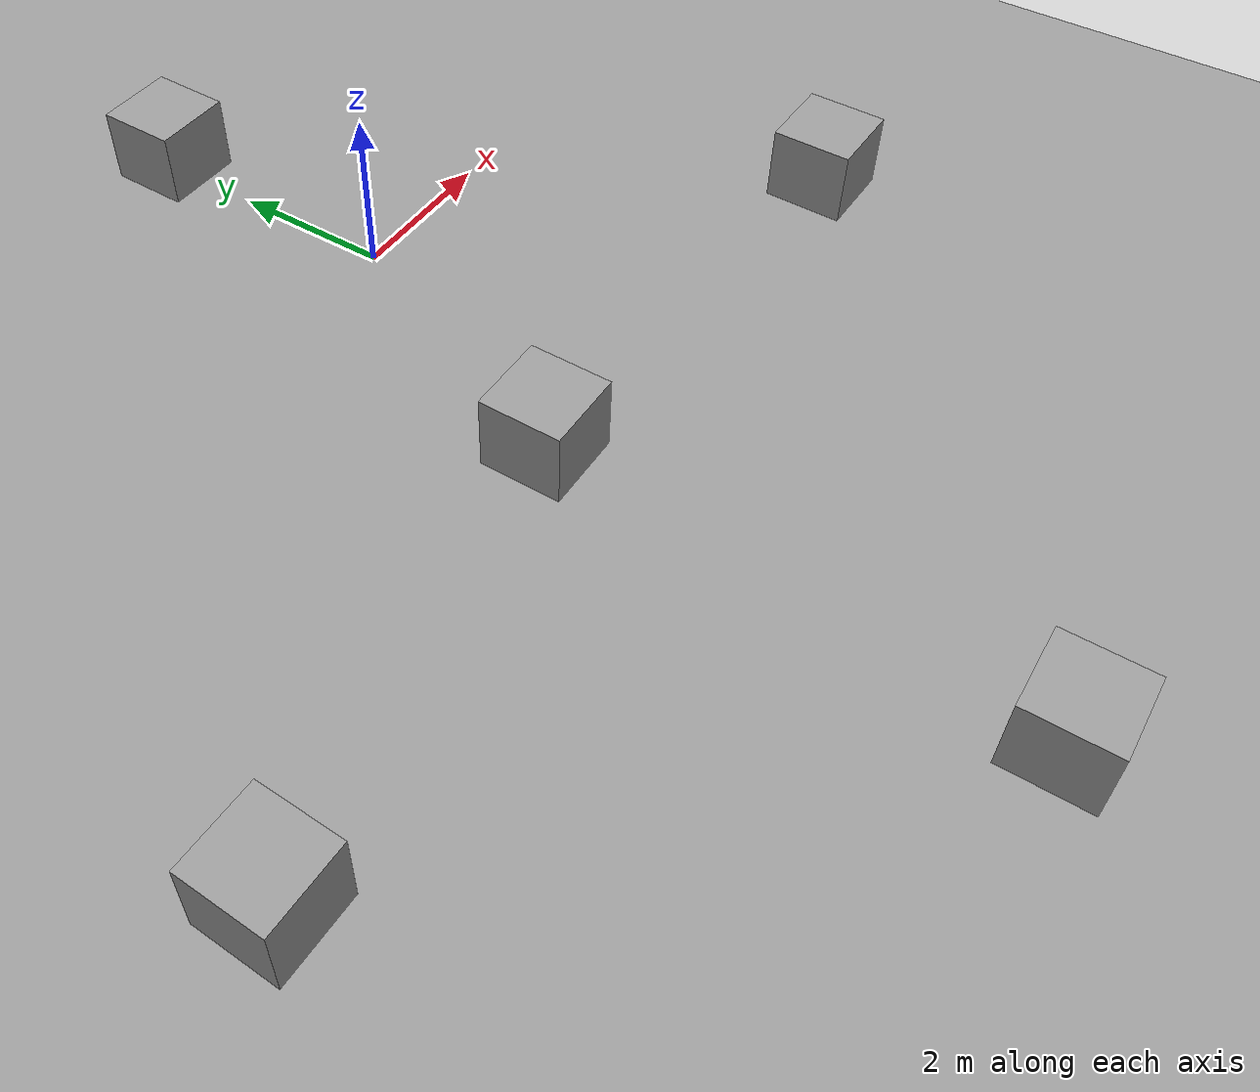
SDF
<sdf version="1.4">
 <world name="default">
  <light name="sun" type="directional">
   <pose>0 0 10 0 -0 0</pose>
   <diffuse>0.8 0.8 0.8 1</diffuse>
   <specular>0.2 0.2 0.2 1</specular>
   <attenuation>
    <range>1000</range>
    <constant>0.9</constant>
    <linear>0.01</linear>
    <quadratic>0.001</quadratic>
   </attenuation>
   <direction>-0.5 0.1 -0.9</direction>
  </light>
  <model name="ground_plane">
   <static>1</static>
   <link name="link">
    <collision name="collision">
     <geometry><plane><normal>0 0 1</normal><size>100 100</size></plane></geometry>
     <surface><friction><ode><mu>100</mu><mu2>50</mu2></ode></friction></surface>
    </collision>
    <visual name="visual">
     <cast_shadows>0</cast_shadows>
     <geometry><plane><normal>0 0 1</normal><size>100 100</size></plane></geometry>
     <material>
      <script><uri>file://media/materials/scripts/gazebo.material</uri><name>Gazebo/Grey</name></script>
     </material>
    </visual>
    <velocity_decay><linear>0</linear><angular>0</angular></velocity_decay>
   </link>
  </model>
  <physics type="ode">
   <max_step_size>0.001</max_step_size>
   <real_time_factor>1</real_time_factor>
   <real_time_update_rate>1000</real_time_update_rate>
   <gravity>0 0 -9.8</gravity>
  </physics>
  <scene><ambient>0.4 0.4 0.4 1</ambient><background>0.7 0.7 0.7 1</background><shadows>1</shadows></scene>
  <spherical_coordinates>
   <surface_model>EARTH_WGS84</surface_model>
   <latitude_deg>0</latitude_deg>
   <longitude_deg>0</longitude_deg>
   <elevation>0</elevation>
   <heading_deg>0</heading_deg>
  </spherical_coordinates>
  <model name="unit_box_1">
   <pose>-1.58179 -3.54762 0.499991 -1.65436e-24 6e-06 -0.001808</pose>
   <link name="link">
    <inertial>
     <mass>1</mass>
     <inertia><ixx>1</ixx><ixy>0</ixy><ixz>0</ixz><iyy>1</iyy><iyz>0</iyz><izz>1</izz></inertia>
    </inertial>
    <collision name="collision"><geometry><box><size>2.94012 3.40072 1</size></box></geometry></collision>
    <visual name="visual">
     <geometry><box><size>1 1 1</size></box></geometry>
     <material>
      <script><uri>file://media/materials/scripts/gazebo.material</uri><name>Gazebo/Grey</name></script>
     </material>
    </visual>
    <velocity_decay><linear>0</linear><angular>0</angular></velocity_decay>
   </link>
   <static>0</static>
  </model>
  <model name="ground_plane_0">
   <static>1</static>
   <link name="link">
    <collision name="collision">
     <geometry><plane><normal>0 0 1</normal><size>100 100</size></plane></geometry>
     <surface><friction><ode><mu>100</mu><mu2>50</mu2></ode></friction></surface>
    </collision>
    <visual name="visual">
     <cast_shadows>0</cast_shadows>
     <geometry><plane><normal>0 0 1</normal><size>100 100</size></plane></geometry>
     <material>
      <script><uri>file://media/materials/scripts/gazebo.material</uri><name>Gazebo/Grey</name></script>
     </material>
    </visual>
    <velocity_decay><linear>0</linear><angular>0</angular></velocity_decay>
   </link>
   <pose>3.44737 -1.42595 0 0 -0 0</pose>
  </model>
  <model name="unit_box_2">
   <pose>-0.050477 3.2153 0.499025 -1e-06 0.000204 -0.006322</pose>
   <link name="link">
    <inertial>
     <mass>1</mass>
     <inertia><ixx>1</ixx><ixy>0</ixy><ixz>0</ixz><iyy>1</iyy><iyz>0</iyz><izz>1</izz></inertia>
    </inertial>
    <collision name="collision"><geometry><box><size>9.56953 1 1</size></box></geometry></collision>
    <visual name="visual">
     <geometry><box><size>1 1 1</size></box></geometry>
     <material>
      <script><uri>file://media/materials/scripts/gazebo.material</uri><name>Gazebo/Grey</name></script>
     </material>
    </visual>
    <velocity_decay><linear>0</linear><angular>0</angular></velocity_decay>
   </link>
   <static>0</static>
  </model>
  <model name="unit_box_3">
   <pose>4.22864 -3.98135 0.49675 -0.000514 -8e-06 -0.015525</pose>
   <link name="link">
    <inertial>
     <mass>1</mass>
     <inertia><ixx>1</ixx><ixy>0</ixy><ixz>0</ixz><iyy>1</iyy><iyz>0</iyz><izz>1</izz></inertia>
    </inertial>
    <collision name="collision"><geometry><box><size>1 12.6842 1</size></box></geometry></collision>
    <visual name="visual">
     <geometry><box><size>1 1 1</size></box></geometry>
     <material>
      <script><uri>file://media/materials/scripts/gazebo.material</uri><name>Gazebo/Grey</name></script>
     </material>
    </visual>
    <velocity_decay><linear>0</linear><angular>0</angular></velocity_decay>
   </link>
   <static>0</static>
  </model>
  <model name="unit_box_5">
   <pose>-2.01754 -9.50566 0.49916 -1e-06 0.000182 0.001516</pose>
   <link name="link">
    <inertial>
     <mass>1</mass>
     <inertia><ixx>1</ixx><ixy>0</ixy><ixz>0</ixz><iyy>1</iyy><iyz>0</iyz><izz>1</izz></inertia>
    </inertial>
    <collision name="collision"><geometry><box><size>9.24658 1 1</size></box></geometry></collision>
    <visual name="visual">
     <geometry><box><size>1 1 1</size></box></geometry>
     <material>
      <script><uri>file://media/materials/scripts/gazebo.material</uri><name>Gazebo/Grey</name></script>
     </material>
    </visual>
    <velocity_decay><linear>0</linear><angular>0</angular></velocity_decay>
   </link>
   <static>0</static>
  </model>
  <model name="unit_box_6">
   <pose>-7.17082 -4.46602 0.495059 0.000707 1.3e-05 -0.018666</pose>
   <link name="link">
    <inertial>
     <mass>1</mass>
     <inertia><ixx>1</ixx><ixy>0</ixy><ixz>0</ixz><iyy>1</iyy><iyz>0</iyz><izz>1</izz></inertia>
    </inertial>
    <collision name="collision"><geometry><box><size>1 14.0126 1</size></box></geometry></collision>
    <visual name="visual">
     <geometry><box><size>1 1 1</size></box></geometry>
     <material>
      <script><uri>file://media/materials/scripts/gazebo.material</uri><name>Gazebo/Grey</name></script>
     </material>
    </visual>
    <velocity_decay><linear>0</linear><angular>0</angular></velocity_decay>
   </link>
   <static>0</static>
  </model>
 </world>
</sdf>
